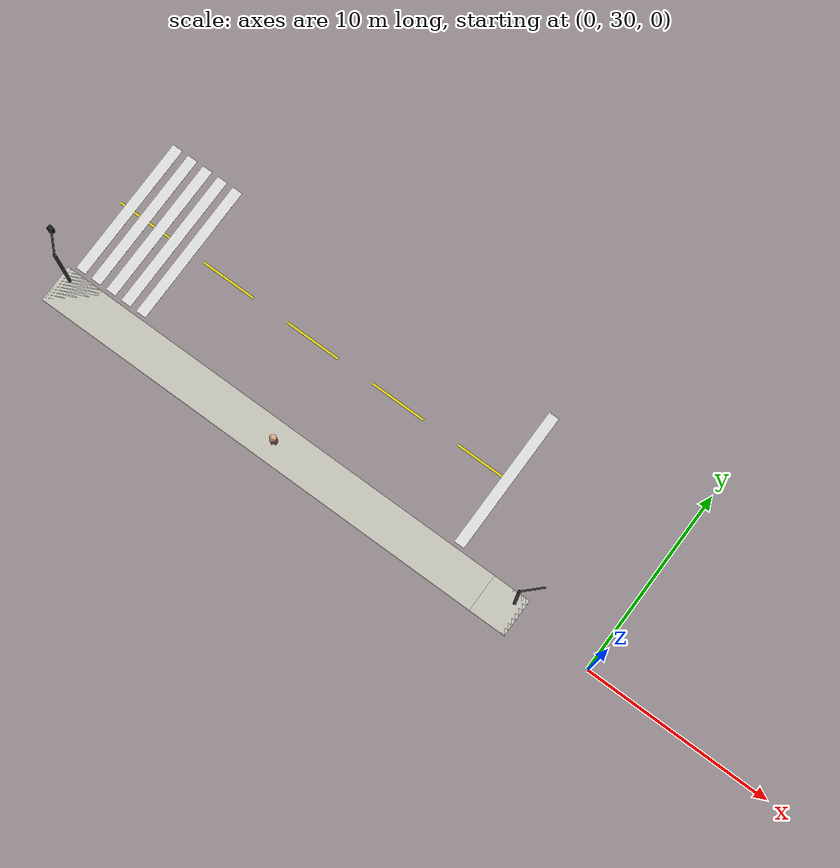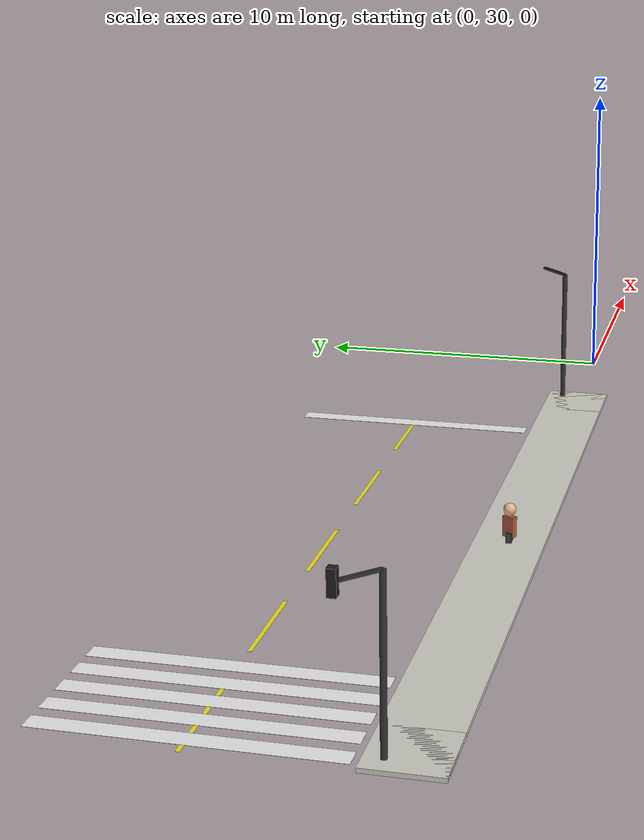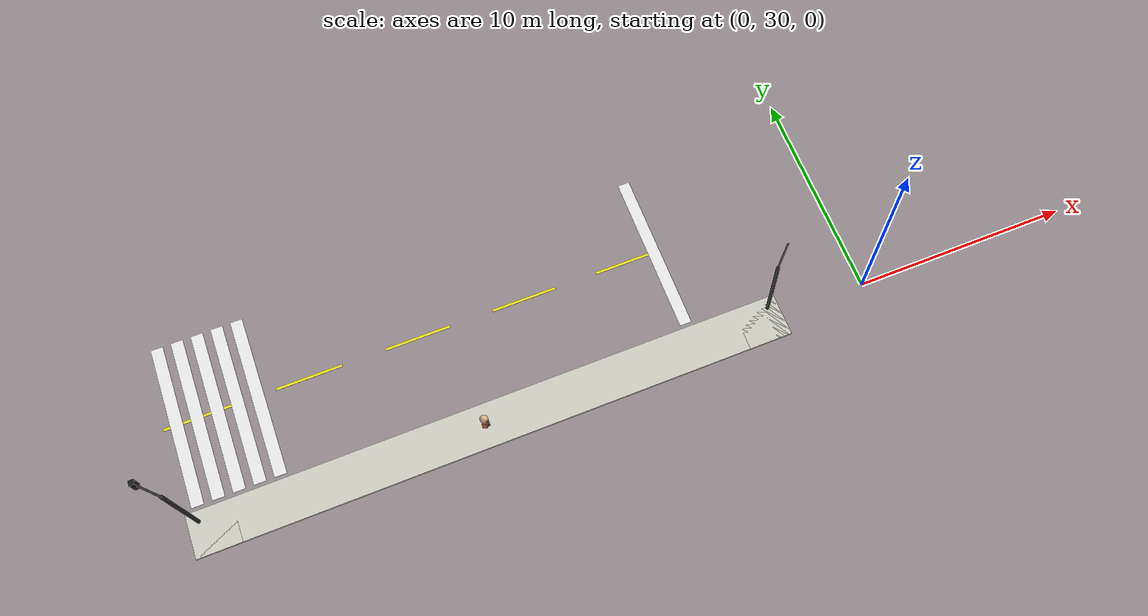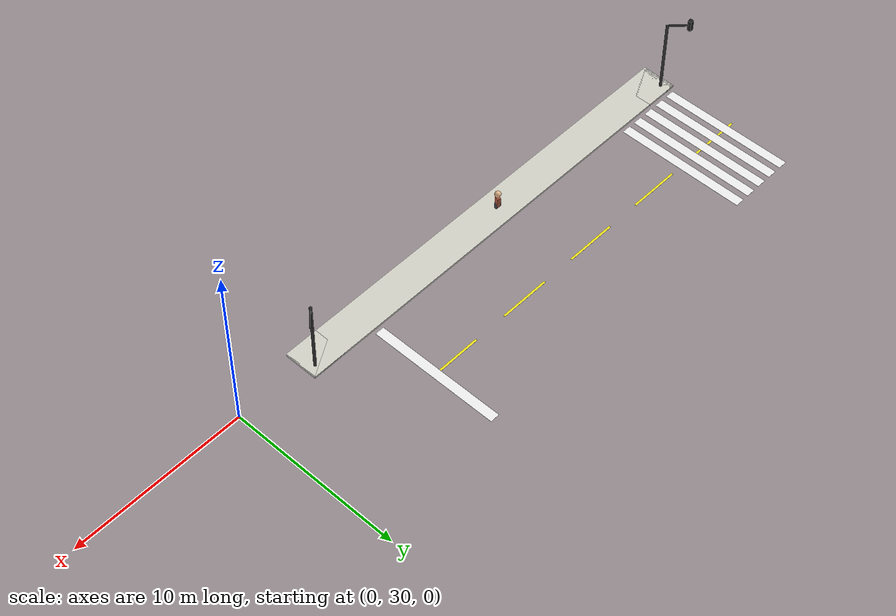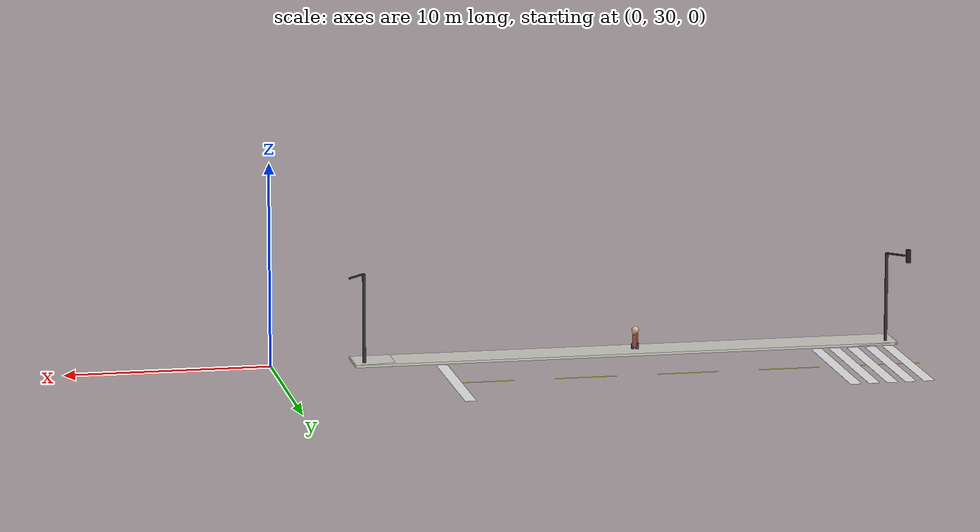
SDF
<sdf version="1.9">
 <world name="city">
  <model name="sw_h_49">
   <static>true</static>
   <pose>-17.5 30.0 0.065 0 0 0</pose>
   <link name="l">
    <collision name="c"><geometry><box><size>27.0 2.0 0.12</size></box></geometry></collision>
    <visual name="v">
     <geometry><box><size>27.0 2.0 0.12</size></box></geometry>
     <material>
      <ambient>0.82 0.82 0.78 1</ambient>
      <diffuse>0.82 0.82 0.78 1</diffuse>
      <specular>0.04 0.04 0.04 1</specular>
     </material>
    </visual>
   </link>
  </model>
  <model name="sw_corner_66">
   <static>true</static>
   <pose>-30.0 30.0 0.065 0 0 0</pose>
   <link name="l">
    <collision name="c"><geometry><box><size>2.0 2.0 0.12</size></box></geometry></collision>
    <visual name="v">
     <geometry><box><size>2.0 2.0 0.12</size></box></geometry>
     <material>
      <ambient>0.82 0.82 0.78 1</ambient>
      <diffuse>0.82 0.82 0.78 1</diffuse>
      <specular>0.04 0.04 0.04 1</specular>
     </material>
    </visual>
   </link>
  </model>
  <model name="sw_corner_76">
   <static>true</static>
   <pose>-5.0 30.0 0.065 0 0 0</pose>
   <link name="l">
    <collision name="c"><geometry><box><size>2.0 2.0 0.12</size></box></geometry></collision>
    <visual name="v">
     <geometry><box><size>2.0 2.0 0.12</size></box></geometry>
     <material>
      <ambient>0.82 0.82 0.78 1</ambient>
      <diffuse>0.82 0.82 0.78 1</diffuse>
      <specular>0.04 0.04 0.04 1</specular>
     </material>
    </visual>
   </link>
  </model>
  <model name="cw_e_135">
   <static>true</static>
   <pose>-30.425 35.0 0.013000000000000001 0 0 0</pose>
   <link name="l">
    <visual name="v">
     <geometry><box><size>0.55 7.6 0.005</size></box></geometry>
     <material>
      <ambient>0.94 0.94 0.94 1</ambient>
      <diffuse>0.94 0.94 0.94 1</diffuse>
      <specular>0.04 0.04 0.04 1</specular>
     </material>
    </visual>
   </link>
  </model>
  <model name="cw_e_139">
   <static>true</static>
   <pose>-29.525 35.0 0.013000000000000001 0 0 0</pose>
   <link name="l">
    <visual name="v">
     <geometry><box><size>0.55 7.6 0.005</size></box></geometry>
     <material>
      <ambient>0.94 0.94 0.94 1</ambient>
      <diffuse>0.94 0.94 0.94 1</diffuse>
      <specular>0.04 0.04 0.04 1</specular>
     </material>
    </visual>
   </link>
  </model>
  <model name="cw_e_143">
   <static>true</static>
   <pose>-28.625 35.0 0.013000000000000001 0 0 0</pose>
   <link name="l">
    <visual name="v">
     <geometry><box><size>0.55 7.6 0.005</size></box></geometry>
     <material>
      <ambient>0.94 0.94 0.94 1</ambient>
      <diffuse>0.94 0.94 0.94 1</diffuse>
      <specular>0.04 0.04 0.04 1</specular>
     </material>
    </visual>
   </link>
  </model>
  <model name="cw_e_147">
   <static>true</static>
   <pose>-27.725 35.0 0.013000000000000001 0 0 0</pose>
   <link name="l">
    <visual name="v">
     <geometry><box><size>0.55 7.6 0.005</size></box></geometry>
     <material>
      <ambient>0.94 0.94 0.94 1</ambient>
      <diffuse>0.94 0.94 0.94 1</diffuse>
      <specular>0.04 0.04 0.04 1</specular>
     </material>
    </visual>
   </link>
  </model>
  <model name="cw_e_151">
   <static>true</static>
   <pose>-26.825 35.0 0.013000000000000001 0 0 0</pose>
   <link name="l">
    <visual name="v">
     <geometry><box><size>0.55 7.6 0.005</size></box></geometry>
     <material>
      <ambient>0.94 0.94 0.94 1</ambient>
      <diffuse>0.94 0.94 0.94 1</diffuse>
      <specular>0.04 0.04 0.04 1</specular>
     </material>
    </visual>
   </link>
  </model>
  <model name="cw_w_210">
   <static>true</static>
   <pose>-8.175 35.0 0.013000000000000001 0 0 0</pose>
   <link name="l">
    <visual name="v">
     <geometry><box><size>0.55 7.6 0.005</size></box></geometry>
     <material>
      <ambient>0.94 0.94 0.94 1</ambient>
      <diffuse>0.94 0.94 0.94 1</diffuse>
      <specular>0.04 0.04 0.04 1</specular>
     </material>
    </visual>
   </link>
  </model>
  <model name="dash_388">
   <static>true</static>
   <pose>-29.5 35.0 0.012 0 0 0</pose>
   <link name="l">
    <visual name="v">
     <geometry><box><size>3.0 0.12 0.003</size></box></geometry>
     <material>
      <ambient>0.95 0.9 0.1 1</ambient>
      <diffuse>0.95 0.9 0.1 1</diffuse>
      <specular>0.04 0.04 0.04 1</specular>
     </material>
    </visual>
   </link>
  </model>
  <model name="dash_389">
   <static>true</static>
   <pose>-24.5 35.0 0.012 0 0 0</pose>
   <link name="l">
    <visual name="v">
     <geometry><box><size>3.0 0.12 0.003</size></box></geometry>
     <material>
      <ambient>0.95 0.9 0.1 1</ambient>
      <diffuse>0.95 0.9 0.1 1</diffuse>
      <specular>0.04 0.04 0.04 1</specular>
     </material>
    </visual>
   </link>
  </model>
  <model name="dash_390">
   <static>true</static>
   <pose>-19.5 35.0 0.012 0 0 0</pose>
   <link name="l">
    <visual name="v">
     <geometry><box><size>3.0 0.12 0.003</size></box></geometry>
     <material>
      <ambient>0.95 0.9 0.1 1</ambient>
      <diffuse>0.95 0.9 0.1 1</diffuse>
      <specular>0.04 0.04 0.04 1</specular>
     </material>
    </visual>
   </link>
  </model>
  <model name="dash_391">
   <static>true</static>
   <pose>-14.5 35.0 0.012 0 0 0</pose>
   <link name="l">
    <visual name="v">
     <geometry><box><size>3.0 0.12 0.003</size></box></geometry>
     <material>
      <ambient>0.95 0.9 0.1 1</ambient>
      <diffuse>0.95 0.9 0.1 1</diffuse>
      <specular>0.04 0.04 0.04 1</specular>
     </material>
    </visual>
   </link>
  </model>
  <model name="dash_392">
   <static>true</static>
   <pose>-9.5 35.0 0.012 0 0 0</pose>
   <link name="l">
    <visual name="v">
     <geometry><box><size>3.0 0.12 0.003</size></box></geometry>
     <material>
      <ambient>0.95 0.9 0.1 1</ambient>
      <diffuse>0.95 0.9 0.1 1</diffuse>
      <specular>0.04 0.04 0.04 1</specular>
     </material>
    </visual>
   </link>
  </model>
  <model name="ped25_t_670">
   <static>true</static>
   <pose>-18 30.0 0.575 0 0 1.0999999999999988</pose>
   <link name="l">
    <collision name="c"><geometry><box><size>0.35 0.2 0.6</size></box></geometry></collision>
    <visual name="v">
     <geometry><box><size>0.35 0.2 0.6</size></box></geometry>
     <material>
      <ambient>0.7 0.35 0.25 1</ambient>
      <diffuse>0.7 0.35 0.25 1</diffuse>
      <specular>0.04 0.04 0.04 1</specular>
     </material>
    </visual>
   </link>
  </model>
  <model name="ped25_h_671">
   <static>true</static>
   <pose>-18 30.0 1.075 0 0 0</pose>
   <link name="l">
    <visual name="v">
     <geometry><sphere><radius>0.18</radius></sphere></geometry>
     <material><ambient>0.9 0.72 0.56 1</ambient><diffuse>0.9 0.72 0.56 1</diffuse></material>
    </visual>
   </link>
  </model>
  <model name="ped25_l-0.1_672">
   <static>true</static>
   <pose>-18.1 30.0 0.275 0 0 0</pose>
   <link name="l">
    <collision name="c"><geometry><box><size>0.14 0.16 0.3</size></box></geometry></collision>
    <visual name="v">
     <geometry><box><size>0.14 0.16 0.3</size></box></geometry>
     <material>
      <ambient>0.25 0.25 0.3 1</ambient>
      <diffuse>0.25 0.25 0.3 1</diffuse>
      <specular>0.04 0.04 0.04 1</specular>
     </material>
    </visual>
   </link>
  </model>
  <model name="ped25_l0.1_673">
   <static>true</static>
   <pose>-17.9 30.0 0.275 0 0 0</pose>
   <link name="l">
    <collision name="c"><geometry><box><size>0.14 0.16 0.3</size></box></geometry></collision>
    <visual name="v">
     <geometry><box><size>0.14 0.16 0.3</size></box></geometry>
     <material>
      <ambient>0.25 0.25 0.3 1</ambient>
      <diffuse>0.25 0.25 0.3 1</diffuse>
      <specular>0.04 0.04 0.04 1</specular>
     </material>
    </visual>
   </link>
  </model>
  <model name="tl_-35_35_1_pole_744">
   <static>true</static>
   <pose>-30.5 30.5 2.255 0 0 0</pose>
   <link name="l">
    <collision name="c">
     <geometry><cylinder><radius>0.08</radius><length>4.5</length></cylinder></geometry>
    </collision>
    <visual name="v">
     <geometry><cylinder><radius>0.08</radius><length>4.5</length></cylinder></geometry>
     <material><ambient>0.2 0.2 0.2 1</ambient><diffuse>0.2 0.2 0.2 1</diffuse></material>
    </visual>
   </link>
  </model>
  <model name="tl_-35_35_1_arm_745">
   <static>true</static>
   <pose>-30.924181545487922 30.92434657588754 4.505 0 0 2.356</pose>
   <link name="l">
    <collision name="c"><geometry><box><size>1.2 0.08 0.08</size></box></geometry></collision>
    <visual name="v">
     <geometry><box><size>1.2 0.08 0.08</size></box></geometry>
     <material>
      <ambient>0.2 0.2 0.2 1</ambient>
      <diffuse>0.2 0.2 0.2 1</diffuse>
      <specular>0.04 0.04 0.04 1</specular>
     </material>
    </visual>
   </link>
  </model>
  <model name="tl_-35_35_1_hous_746">
   <static>true</static>
   <pose>-31.34836309097584 31.348693151775077 4.505 0 0 0</pose>
   <link name="l">
    <collision name="c"><geometry><box><size>0.22 0.22 0.65</size></box></geometry></collision>
    <visual name="v">
     <geometry><box><size>0.22 0.22 0.65</size></box></geometry>
     <material>
      <ambient>0.12 0.12 0.12 1</ambient>
      <diffuse>0.12 0.12 0.12 1</diffuse>
      <specular>0.04 0.04 0.04 1</specular>
     </material>
    </visual>
   </link>
  </model>
  <model name="tl_-35_35_1_l0_747">
   <static>true</static>
   <pose>-31.34836309097584 31.348693151775077 4.705 0 0 0</pose>
   <link name="l">
    <visual name="v">
     <geometry><sphere><radius>0.07</radius></sphere></geometry>
     <material><ambient>0.95 0.08 0.08 1</ambient><diffuse>0.95 0.08 0.08 1</diffuse></material>
    </visual>
   </link>
  </model>
  <model name="tl_-35_35_1_l1_748">
   <static>true</static>
   <pose>-31.34836309097584 31.348693151775077 4.505 0 0 0</pose>
   <link name="l">
    <visual name="v">
     <geometry><sphere><radius>0.07</radius></sphere></geometry>
     <material><ambient>0.9 0.8 0.05 1</ambient><diffuse>0.9 0.8 0.05 1</diffuse></material>
    </visual>
   </link>
  </model>
  <model name="tl_-35_35_1_l2_749">
   <static>true</static>
   <pose>-31.34836309097584 31.348693151775077 4.305 0 0 0</pose>
   <link name="l">
    <visual name="v">
     <geometry><sphere><radius>0.07</radius></sphere></geometry>
     <material><ambient>0.05 0.85 0.15 1</ambient><diffuse>0.05 0.85 0.15 1</diffuse></material>
    </visual>
   </link>
  </model>
  <model name="tl_0_35_0_pole_810">
   <static>true</static>
   <pose>-4.5 30.5 2.255 0 0 0</pose>
   <link name="l">
    <collision name="c">
     <geometry><cylinder><radius>0.08</radius><length>4.5</length></cylinder></geometry>
    </collision>
    <visual name="v">
     <geometry><cylinder><radius>0.08</radius><length>4.5</length></cylinder></geometry>
     <material><ambient>0.2 0.2 0.2 1</ambient><diffuse>0.2 0.2 0.2 1</diffuse></material>
    </visual>
   </link>
  </model>
  <model name="tl_0_35_0_arm_811">
   <static>true</static>
   <pose>-4.07556703849968 30.92409510866322 4.505 0 0 0.785</pose>
   <link name="l">
    <collision name="c"><geometry><box><size>1.2 0.08 0.08</size></box></geometry></collision>
    <visual name="v">
     <geometry><box><size>1.2 0.08 0.08</size></box></geometry>
     <material>
      <ambient>0.2 0.2 0.2 1</ambient>
      <diffuse>0.2 0.2 0.2 1</diffuse>
      <specular>0.04 0.04 0.04 1</specular>
     </material>
    </visual>
   </link>
  </model>
 </world>
</sdf>
